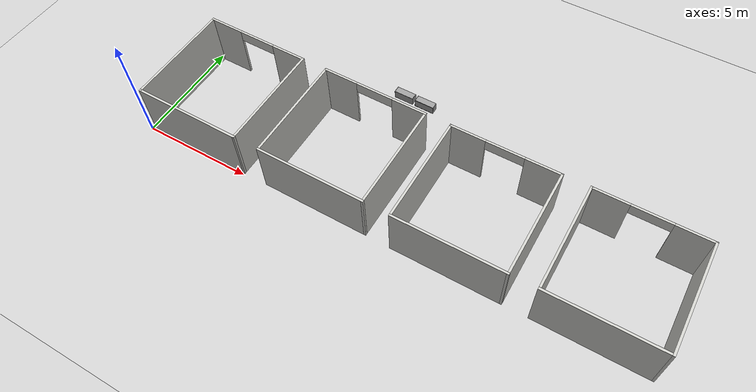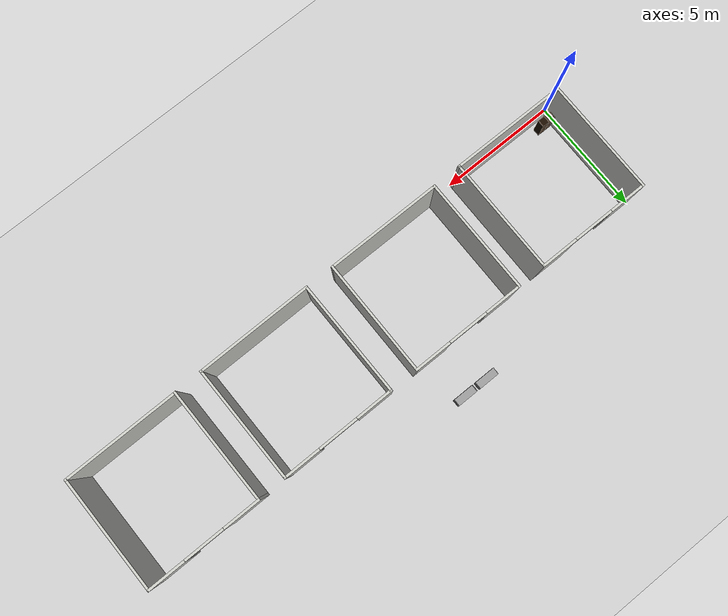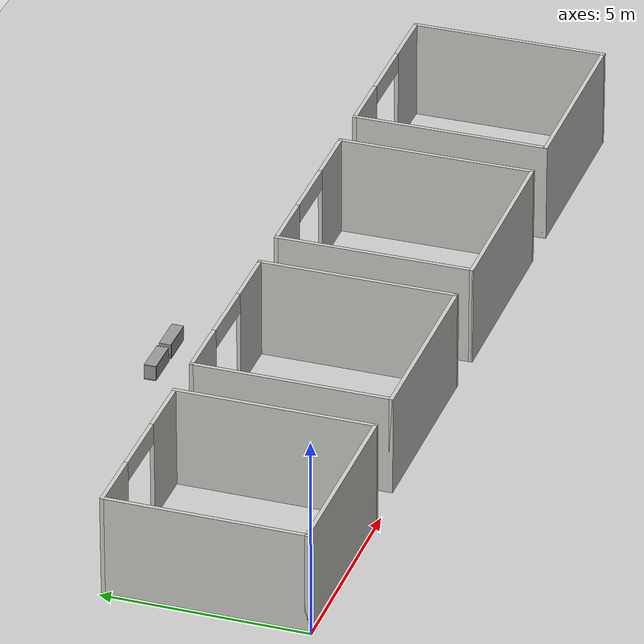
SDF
<sdf version="1.6">
 <world name="default">
  <model name="ground_plane">
   <static>1</static>
   <link name="link">
    <collision name="collision">
     <geometry><plane><normal>0 0 1</normal><size>100 100</size></plane></geometry>
     <surface><friction><ode><mu>100</mu><mu2>50</mu2></ode></friction></surface>
    </collision>
    <visual name="visual">
     <cast_shadows>0</cast_shadows>
     <geometry><plane><normal>0 0 1</normal><size>100 100</size></plane></geometry>
     <material>
      <script><uri>file://media/materials/scripts/gazebo.material</uri><name>Gazebo/Grey</name></script>
     </material>
    </visual>
   </link>
  </model>
  <model name="6_Cube_StorageE">
   <link name="Wall_0">
    <pose>0 0 0.01 0 -0 0</pose>
    <inertial>
     <mass>1.6201</mass>
     <inertia><ixx>0.0119</ixx><iyy>0.0631</iyy><izz>0.0513</izz><ixy>0</ixy><ixz>0</ixz><iyz>0</iyz></inertia>
    </inertial>
    <collision name="Wall_0_Collision"><geometry><box><size>0.616 0.296 0.02</size></box></geometry></collision>
    <visual name="Wall_0_Visual">
     <geometry><box><size>0.616 0.296 0.02</size></box></geometry>
     <material>
      <script><uri>file://media/materials/scripts/gazebo.material</uri><name>Gazebo/Grey</name></script>
      <ambient>0.105882 0.0509804 0 1</ambient>
     </material>
    </visual>
   </link>
   <joint name="0_2" type="fixed">
    <pose>-0.308 0 0 0 -0 0</pose>
    <parent>Wall_2</parent>
    <child>Wall_0</child>
    <axis>
     <xyz>1 0 0</xyz>
     <use_parent_model_frame>0</use_parent_model_frame>
     <limit><lower>-1e+16</lower><upper>1e+16</upper></limit>
    </axis>
   </joint>
   <joint name="0_12" type="fixed">
    <parent>Wall_12</parent>
    <child>Wall_0</child>
    <axis>
     <xyz>0 0 1</xyz>
     <use_parent_model_frame>0</use_parent_model_frame>
     <limit><lower>-1e+16</lower><upper>1e+16</upper></limit>
    </axis>
   </joint>
   <joint name="0_4" type="fixed">
    <pose>0.308 0 0 0 -0 0</pose>
    <parent>Wall_4</parent>
    <child>Wall_0</child>
    <axis>
     <xyz>1 0 0</xyz>
     <use_parent_model_frame>0</use_parent_model_frame>
     <limit><lower>-1e+16</lower><upper>1e+16</upper></limit>
    </axis>
   </joint>
   <link name="Wall_10">
    <pose>0 0 0.61 0 -0 0</pose>
    <inertial>
     <mass>1.6201</mass>
     <inertia><ixx>0.0119</ixx><iyy>0.0631</iyy><izz>0.0513</izz><ixy>0</ixy><ixz>0</ixz><iyz>0</iyz></inertia>
    </inertial>
    <collision name="Wall_10_Collision"><geometry><box><size>0.616 0.296 0.02</size></box></geometry></collision>
    <visual name="Wall_10_Visual">
     <geometry><box><size>0.616 0.296 0.02</size></box></geometry>
     <material>
      <script><uri>file://media/materials/scripts/gazebo.material</uri><name>Gazebo/Grey</name></script>
      <ambient>0.105882 0.0509804 0 1</ambient>
     </material>
    </visual>
   </link>
   <joint name="10_2" type="fixed">
    <pose>-0.308 0 0 0 -0 0</pose>
    <parent>Wall_2</parent>
    <child>Wall_10</child>
    <axis>
     <xyz>1 0 0</xyz>
     <use_parent_model_frame>0</use_parent_model_frame>
     <limit><lower>-1e+16</lower><upper>1e+16</upper></limit>
    </axis>
   </joint>
   <joint name="10_12" type="fixed">
    <parent>Wall_12</parent>
    <child>Wall_10</child>
    <axis>
     <xyz>0 0 1</xyz>
     <use_parent_model_frame>0</use_parent_model_frame>
     <limit><lower>-1e+16</lower><upper>1e+16</upper></limit>
    </axis>
   </joint>
   <joint name="10_4" type="fixed">
    <pose>0.308 0 0 0 -0 0</pose>
    <parent>Wall_4</parent>
    <child>Wall_10</child>
    <axis>
     <xyz>1 0 0</xyz>
     <use_parent_model_frame>0</use_parent_model_frame>
     <limit><lower>-1e+16</lower><upper>1e+16</upper></limit>
    </axis>
   </joint>
   <link name="Wall_12">
    <pose>0 0 0.4575 0 -0 0</pose>
    <inertial>
     <mass>2.4065</mass>
     <inertia><ixx>0.0177</ixx><iyy>0.1855</iyy><izz>0.168</izz><ixy>0</ixy><ixz>0</ixz><iyz>0</iyz></inertia>
    </inertial>
    <collision name="Wall_12_Collision"><geometry><box><size>0.02 0.296 0.915</size></box></geometry></collision>
    <visual name="Wall_12_Visual">
     <geometry><box><size>0.02 0.296 0.915</size></box></geometry>
     <material>
      <script><uri>file://media/materials/scripts/gazebo.material</uri><name>Gazebo/Grey</name></script>
      <ambient>0.105882 0.0509804 0 1</ambient>
     </material>
    </visual>
   </link>
   <link name="Wall_2">
    <pose>-0.298 0 0.4575 0 -0 0</pose>
    <inertial>
     <mass>2.4065</mass>
     <inertia><ixx>0.0177</ixx><iyy>0.1855</iyy><izz>0.168</izz><ixy>0</ixy><ixz>0</ixz><iyz>0</iyz></inertia>
    </inertial>
    <collision name="Wall_2_Collision"><geometry><box><size>0.02 0.296 0.915</size></box></geometry></collision>
    <visual name="Wall_2_Visual">
     <geometry><box><size>0.02 0.296 0.915</size></box></geometry>
     <material>
      <script><uri>file://media/materials/scripts/gazebo.material</uri><name>Gazebo/Grey</name></script>
      <ambient>0.105882 0.0509804 0 1</ambient>
     </material>
    </visual>
   </link>
   <link name="Wall_4">
    <pose>0.298 0 0.4575 0 -0 0</pose>
    <inertial>
     <mass>2.4065</mass>
     <inertia><ixx>0.0177</ixx><iyy>0.1855</iyy><izz>0.168</izz><ixy>0</ixy><ixz>0</ixz><iyz>0</iyz></inertia>
    </inertial>
    <collision name="Wall_4_Collision"><geometry><box><size>0.02 0.296 0.915</size></box></geometry></collision>
    <visual name="Wall_4_Visual">
     <geometry><box><size>0.02 0.296 0.915</size></box></geometry>
     <material>
      <script><uri>file://media/materials/scripts/gazebo.material</uri><name>Gazebo/Grey</name></script>
      <ambient>0.105882 0.0509804 0 1</ambient>
     </material>
    </visual>
   </link>
   <link name="Wall_6">
    <pose>0 0 0.905 0 -0 0</pose>
    <inertial>
     <mass>1.6201</mass>
     <inertia><ixx>0.0119</ixx><iyy>0.0631</iyy><izz>0.0513</izz><ixy>0</ixy><ixz>0</ixz><iyz>0</iyz></inertia>
    </inertial>
    <collision name="Wall_6_Collision"><geometry><box><size>0.616 0.296 0.02</size></box></geometry></collision>
    <visual name="Wall_6_Visual">
     <geometry><box><size>0.616 0.296 0.02</size></box></geometry>
     <material>
      <script><uri>file://media/materials/scripts/gazebo.material</uri><name>Gazebo/Grey</name></script>
      <ambient>0.105882 0.0509804 0 1</ambient>
     </material>
    </visual>
   </link>
   <joint name="6_2" type="fixed">
    <pose>-0.308 0 0 0 -0 0</pose>
    <parent>Wall_2</parent>
    <child>Wall_6</child>
    <axis>
     <xyz>2 0 0</xyz>
     <use_parent_model_frame>0</use_parent_model_frame>
     <limit><lower>-1e+16</lower><upper>1e+16</upper></limit>
    </axis>
   </joint>
   <joint name="6_12" type="fixed">
    <parent>Wall_12</parent>
    <child>Wall_6</child>
    <axis>
     <xyz>0 0 1</xyz>
     <use_parent_model_frame>0</use_parent_model_frame>
     <limit><lower>-1e+16</lower><upper>1e+16</upper></limit>
    </axis>
   </joint>
   <joint name="6_4" type="fixed">
    <pose>0.308 0 0 0 -0 0</pose>
    <parent>Wall_4</parent>
    <child>Wall_6</child>
    <axis>
     <xyz>1 0 0</xyz>
     <use_parent_model_frame>0</use_parent_model_frame>
     <limit><lower>-1e+16</lower><upper>1e+16</upper></limit>
    </axis>
   </joint>
   <link name="Wall_8">
    <pose>0 0 0.305 0 -0 0</pose>
    <inertial>
     <mass>1.6201</mass>
     <inertia><ixx>0.0119</ixx><iyy>0.0631</iyy><izz>0.0513</izz><ixy>0</ixy><ixz>0</ixz><iyz>0</iyz></inertia>
    </inertial>
    <collision name="Wall_8_Collision"><geometry><box><size>0.616 0.296 0.02</size></box></geometry></collision>
    <visual name="Wall_8_Visual">
     <geometry><box><size>0.616 0.296 0.02</size></box></geometry>
     <material>
      <script><uri>file://media/materials/scripts/gazebo.material</uri><name>Gazebo/Grey</name></script>
      <ambient>0.105882 0.0509804 0 1</ambient>
     </material>
    </visual>
   </link>
   <joint name="8_2" type="fixed">
    <pose>-0.308 0 0 0 -0 0</pose>
    <parent>Wall_2</parent>
    <child>Wall_8</child>
    <axis>
     <xyz>1 0 0</xyz>
     <use_parent_model_frame>0</use_parent_model_frame>
     <limit><lower>-1e+16</lower><upper>1e+16</upper></limit>
    </axis>
   </joint>
   <joint name="8_12" type="fixed">
    <parent>Wall_12</parent>
    <child>Wall_8</child>
    <axis>
     <xyz>0 0 1</xyz>
     <use_parent_model_frame>0</use_parent_model_frame>
     <limit><lower>-1e+16</lower><upper>1e+16</upper></limit>
    </axis>
   </joint>
   <joint name="8_4" type="fixed">
    <pose>0.308 0 0 0 -0 0</pose>
    <parent>Wall_4</parent>
    <child>Wall_8</child>
    <axis>
     <xyz>1 0 0</xyz>
     <use_parent_model_frame>0</use_parent_model_frame>
     <limit><lower>-1e+16</lower><upper>1e+16</upper></limit>
    </axis>
   </joint>
   <static>1</static>
   <pose>0.564082 0.506841 0 0 -0 3.13237</pose>
  </model>
  <model name="Wall_Cabinet_36x15W_0">
   <link name="Wall_0">
    <pose>0 0 0.01 0 -0 0</pose>
    <inertial>
     <mass>1.9796</mass>
     <inertia><ixx>0.0145</ixx><iyy>0.1511</iyy><izz>0.1367</izz><ixy>0</ixy><ixz>0</ixz><iyz>0</iyz></inertia>
    </inertial>
    <collision name="Wall_0_Collision"><geometry><box><size>0.91 0.296 0.02</size></box></geometry></collision>
    <visual name="Wall_0_Visual">
     <geometry><box><size>0.91 0.296 0.02</size></box></geometry>
     <material>
      <script><uri>file://media/materials/scripts/gazebo.material</uri><name>Gazebo/Grey</name></script>
      <ambient>1 1 1 1</ambient>
     </material>
    </visual>
   </link>
   <joint name="0_2" type="fixed">
    <pose>-0.455 0 0 0 -0 0</pose>
    <parent>Wall_2</parent>
    <child>Wall_0</child>
    <axis>
     <xyz>0 0 1</xyz>
     <use_parent_model_frame>0</use_parent_model_frame>
     <limit><lower>-1e+16</lower><upper>1e+16</upper></limit>
    </axis>
   </joint>
   <joint name="0_4" type="fixed">
    <pose>0.455 0 0 0 -0 0</pose>
    <parent>Wall_4</parent>
    <child>Wall_0</child>
    <axis>
     <xyz>0 0 1</xyz>
     <use_parent_model_frame>0</use_parent_model_frame>
     <limit><lower>-1e+16</lower><upper>1e+16</upper></limit>
    </axis>
   </joint>
   <joint name="0_8" type="fixed">
    <pose>0 -0.148 0 0 -0 0</pose>
    <parent>Wall_8</parent>
    <child>Wall_0</child>
    <axis>
     <xyz>0 0 1</xyz>
     <use_parent_model_frame>0</use_parent_model_frame>
     <limit><lower>-1e+16</lower><upper>1e+16</upper></limit>
    </axis>
   </joint>
   <link name="Wall_2">
    <pose>-0.445 0 0.192 0 -0 0</pose>
    <inertial>
     <mass>0.8353</mass>
     <inertia><ixx>0.0061</ixx><iyy>0.0164</iyy><izz>0.0103</izz><ixy>0</ixy><ixz>0</ixz><iyz>0</iyz></inertia>
    </inertial>
    <collision name="Wall_2_Collision"><geometry><box><size>0.02 0.296 0.384</size></box></geometry></collision>
    <visual name="Wall_2_Visual">
     <geometry><box><size>0.02 0.296 0.384</size></box></geometry>
     <material>
      <script><uri>file://media/materials/scripts/gazebo.material</uri><name>Gazebo/Grey</name></script>
      <ambient>1 1 1 1</ambient>
     </material>
    </visual>
   </link>
   <link name="Wall_4">
    <pose>0.445 0 0.192 0 -0 0</pose>
    <inertial>
     <mass>0.8353</mass>
     <inertia><ixx>0.0061</ixx><iyy>0.0164</iyy><izz>0.0103</izz><ixy>0</ixy><ixz>0</ixz><iyz>0</iyz></inertia>
    </inertial>
    <collision name="Wall_4_Collision"><geometry><box><size>0.02 0.296 0.384</size></box></geometry></collision>
    <visual name="Wall_4_Visual">
     <geometry><box><size>0.02 0.296 0.384</size></box></geometry>
     <material>
      <script><uri>file://media/materials/scripts/gazebo.material</uri><name>Gazebo/Grey</name></script>
      <ambient>1 1 1 1</ambient>
     </material>
    </visual>
   </link>
   <link name="Wall_6">
    <pose>0 0 0.374 0 -0 0</pose>
    <inertial>
     <mass>1.9796</mass>
     <inertia><ixx>0.0145</ixx><iyy>0.1511</iyy><izz>0.1367</izz><ixy>0</ixy><ixz>0</ixz><iyz>0</iyz></inertia>
    </inertial>
    <collision name="Wall_6_Collision"><geometry><box><size>0.91 0.296 0.02</size></box></geometry></collision>
    <visual name="Wall_6_Visual">
     <geometry><box><size>0.91 0.296 0.02</size></box></geometry>
     <material>
      <script><uri>file://media/materials/scripts/gazebo.material</uri><name>Gazebo/Grey</name></script>
      <ambient>1 1 1 1</ambient>
     </material>
    </visual>
   </link>
   <joint name="6_2" type="fixed">
    <pose>-0.455 0 0 0 -0 0</pose>
    <parent>Wall_2</parent>
    <child>Wall_6</child>
    <axis>
     <xyz>0 0 1</xyz>
     <use_parent_model_frame>0</use_parent_model_frame>
     <limit><lower>-1e+16</lower><upper>1e+16</upper></limit>
    </axis>
   </joint>
   <joint name="6_4" type="fixed">
    <pose>0.455 0 0 0 -0 0</pose>
    <parent>Wall_4</parent>
    <child>Wall_6</child>
    <axis>
     <xyz>0 0 1</xyz>
     <use_parent_model_frame>0</use_parent_model_frame>
     <limit><lower>-1e+16</lower><upper>1e+16</upper></limit>
    </axis>
   </joint>
   <joint name="6_8" type="fixed">
    <pose>0 -0.148 0 0 -0 0</pose>
    <parent>Wall_8</parent>
    <child>Wall_6</child>
    <axis>
     <xyz>0 0 1</xyz>
     <use_parent_model_frame>0</use_parent_model_frame>
     <limit><lower>-1e+16</lower><upper>1e+16</upper></limit>
    </axis>
   </joint>
   <link name="Wall_8">
    <pose>0 -0.138 0.19 0 -0 0</pose>
    <inertial>
     <mass>2.5302</mass>
     <inertia><ixx>0.0305</ixx><iyy>0.1732</iyy><izz>0.2035</izz><ixy>0</ixy><ixz>0</ixz><iyz>0</iyz></inertia>
    </inertial>
    <collision name="Wall_8_Collision"><geometry><box><size>0.906 0.02 0.38</size></box></geometry></collision>
    <visual name="Wall_8_Visual">
     <geometry><box><size>0.906 0.02 0.38</size></box></geometry>
     <material>
      <script><uri>file://media/materials/scripts/gazebo.material</uri><name>Gazebo/Grey</name></script>
      <ambient>1 1 1 1</ambient>
     </material>
    </visual>
   </link>
   <joint name="8_2" type="fixed">
    <pose>-0.453 0 0 0 -0 0</pose>
    <parent>Wall_2</parent>
    <child>Wall_8</child>
    <axis>
     <xyz>0 1 0</xyz>
     <use_parent_model_frame>0</use_parent_model_frame>
     <limit><lower>-1e+16</lower><upper>1e+16</upper></limit>
    </axis>
   </joint>
   <joint name="8_4" type="fixed">
    <pose>0.453 0 0 0 -0 0</pose>
    <parent>Wall_4</parent>
    <child>Wall_8</child>
    <axis>
     <xyz>0 1 0</xyz>
     <use_parent_model_frame>0</use_parent_model_frame>
     <limit><lower>-1e+16</lower><upper>1e+16</upper></limit>
    </axis>
   </joint>
   <static>1</static>
   <pose>8.93468 6.79978 0.323467 0 -0 0</pose>
  </model>
  <model name="Wall_Cabinet_36x15W_1">
   <link name="Wall_0">
    <pose>0 0 0.01 0 -0 0</pose>
    <inertial>
     <mass>1.9796</mass>
     <inertia><ixx>0.0145</ixx><iyy>0.1511</iyy><izz>0.1367</izz><ixy>0</ixy><ixz>0</ixz><iyz>0</iyz></inertia>
    </inertial>
    <collision name="Wall_0_Collision"><geometry><box><size>0.91 0.296 0.02</size></box></geometry></collision>
    <visual name="Wall_0_Visual">
     <geometry><box><size>0.91 0.296 0.02</size></box></geometry>
     <material>
      <script><uri>file://media/materials/scripts/gazebo.material</uri><name>Gazebo/Grey</name></script>
      <ambient>1 1 1 1</ambient>
     </material>
    </visual>
   </link>
   <joint name="0_2" type="fixed">
    <pose>-0.455 0 0 0 -0 0</pose>
    <parent>Wall_2</parent>
    <child>Wall_0</child>
    <axis>
     <xyz>0 0 1</xyz>
     <use_parent_model_frame>0</use_parent_model_frame>
     <limit><lower>-1e+16</lower><upper>1e+16</upper></limit>
    </axis>
   </joint>
   <joint name="0_4" type="fixed">
    <pose>0.455 0 0 0 -0 0</pose>
    <parent>Wall_4</parent>
    <child>Wall_0</child>
    <axis>
     <xyz>0 0 1</xyz>
     <use_parent_model_frame>0</use_parent_model_frame>
     <limit><lower>-1e+16</lower><upper>1e+16</upper></limit>
    </axis>
   </joint>
   <joint name="0_8" type="fixed">
    <pose>0 -0.148 0 0 -0 0</pose>
    <parent>Wall_8</parent>
    <child>Wall_0</child>
    <axis>
     <xyz>0 0 1</xyz>
     <use_parent_model_frame>0</use_parent_model_frame>
     <limit><lower>-1e+16</lower><upper>1e+16</upper></limit>
    </axis>
   </joint>
   <link name="Wall_2">
    <pose>-0.445 0 0.192 0 -0 0</pose>
    <inertial>
     <mass>0.8353</mass>
     <inertia><ixx>0.0061</ixx><iyy>0.0164</iyy><izz>0.0103</izz><ixy>0</ixy><ixz>0</ixz><iyz>0</iyz></inertia>
    </inertial>
    <collision name="Wall_2_Collision"><geometry><box><size>0.02 0.296 0.384</size></box></geometry></collision>
    <visual name="Wall_2_Visual">
     <geometry><box><size>0.02 0.296 0.384</size></box></geometry>
     <material>
      <script><uri>file://media/materials/scripts/gazebo.material</uri><name>Gazebo/Grey</name></script>
      <ambient>1 1 1 1</ambient>
     </material>
    </visual>
   </link>
   <link name="Wall_4">
    <pose>0.445 0 0.192 0 -0 0</pose>
    <inertial>
     <mass>0.8353</mass>
     <inertia><ixx>0.0061</ixx><iyy>0.0164</iyy><izz>0.0103</izz><ixy>0</ixy><ixz>0</ixz><iyz>0</iyz></inertia>
    </inertial>
    <collision name="Wall_4_Collision"><geometry><box><size>0.02 0.296 0.384</size></box></geometry></collision>
    <visual name="Wall_4_Visual">
     <geometry><box><size>0.02 0.296 0.384</size></box></geometry>
     <material>
      <script><uri>file://media/materials/scripts/gazebo.material</uri><name>Gazebo/Grey</name></script>
      <ambient>1 1 1 1</ambient>
     </material>
    </visual>
   </link>
   <link name="Wall_6">
    <pose>0 0 0.374 0 -0 0</pose>
    <inertial>
     <mass>1.9796</mass>
     <inertia><ixx>0.0145</ixx><iyy>0.1511</iyy><izz>0.1367</izz><ixy>0</ixy><ixz>0</ixz><iyz>0</iyz></inertia>
    </inertial>
    <collision name="Wall_6_Collision"><geometry><box><size>0.91 0.296 0.02</size></box></geometry></collision>
    <visual name="Wall_6_Visual">
     <geometry><box><size>0.91 0.296 0.02</size></box></geometry>
     <material>
      <script><uri>file://media/materials/scripts/gazebo.material</uri><name>Gazebo/Grey</name></script>
      <ambient>1 1 1 1</ambient>
     </material>
    </visual>
   </link>
   <joint name="6_2" type="fixed">
    <pose>-0.455 0 0 0 -0 0</pose>
    <parent>Wall_2</parent>
    <child>Wall_6</child>
    <axis>
     <xyz>0 0 1</xyz>
     <use_parent_model_frame>0</use_parent_model_frame>
     <limit><lower>-1e+16</lower><upper>1e+16</upper></limit>
    </axis>
   </joint>
   <joint name="6_4" type="fixed">
    <pose>0.455 0 0 0 -0 0</pose>
    <parent>Wall_4</parent>
    <child>Wall_6</child>
    <axis>
     <xyz>0 0 1</xyz>
     <use_parent_model_frame>0</use_parent_model_frame>
     <limit><lower>-1e+16</lower><upper>1e+16</upper></limit>
    </axis>
   </joint>
   <joint name="6_8" type="fixed">
    <pose>0 -0.148 0 0 -0 0</pose>
    <parent>Wall_8</parent>
    <child>Wall_6</child>
    <axis>
     <xyz>0 0 1</xyz>
     <use_parent_model_frame>0</use_parent_model_frame>
     <limit><lower>-1e+16</lower><upper>1e+16</upper></limit>
    </axis>
   </joint>
   <link name="Wall_8">
    <pose>0 -0.138 0.19 0 -0 0</pose>
    <inertial>
     <mass>2.5302</mass>
     <inertia><ixx>0.0305</ixx><iyy>0.1732</iyy><izz>0.2035</izz><ixy>0</ixy><ixz>0</ixz><iyz>0</iyz></inertia>
    </inertial>
    <collision name="Wall_8_Collision"><geometry><box><size>0.906 0.02 0.38</size></box></geometry></collision>
    <visual name="Wall_8_Visual">
     <geometry><box><size>0.906 0.02 0.38</size></box></geometry>
     <material>
      <script><uri>file://media/materials/scripts/gazebo.material</uri><name>Gazebo/Grey</name></script>
      <ambient>1 1 1 1</ambient>
     </material>
    </visual>
   </link>
   <joint name="8_2" type="fixed">
    <pose>-0.453 0 0 0 -0 0</pose>
    <parent>Wall_2</parent>
    <child>Wall_8</child>
    <axis>
     <xyz>0 1 0</xyz>
     <use_parent_model_frame>0</use_parent_model_frame>
     <limit><lower>-1e+16</lower><upper>1e+16</upper></limit>
    </axis>
   </joint>
   <joint name="8_4" type="fixed">
    <pose>0.453 0 0 0 -0 0</pose>
    <parent>Wall_4</parent>
    <child>Wall_8</child>
    <axis>
     <xyz>0 1 0</xyz>
     <use_parent_model_frame>0</use_parent_model_frame>
     <limit><lower>-1e+16</lower><upper>1e+16</upper></limit>
    </axis>
   </joint>
   <static>1</static>
   <pose>9.96545 6.79431 0.32179 0 -0 0</pose>
  </model>
  <model name="room_wall_7">
   <pose>2.55527 2.53266 0 0 -0 1.56855</pose>
   <link name="Wall_21">
    <collision name="Wall_21_Collision">
     <geometry><box><size>4.9 0.1 2.5</size></box></geometry>
     <pose>0 0 1.25 0 -0 0</pose>
    </collision>
    <visual name="Wall_21_Visual">
     <pose>0 0 1.25 0 -0 0</pose>
     <geometry><box><size>4.9 0.1 2.5</size></box></geometry>
     <material>
      <script><uri>file://media/materials/scripts/gazebo.material</uri><name>Gazebo/CeilingTiled</name></script>
      <ambient>1 0.764706 0.305882 1</ambient>
     </material>
     <meta><layer>0</layer></meta>
    </visual>
    <pose>0 2.4 0 0 -0 0</pose>
   </link>
   <link name="Wall_22">
    <pose>2.4 0 0 0 0 -1.5708</pose>
    <visual name="Wall_22_Visual_0">
     <pose>-1.64961 0 1.25 0 -0 0</pose>
     <geometry><box><size>1.60079 0.1 2.5</size></box></geometry>
     <material>
      <script><uri>file://media/materials/scripts/gazebo.material</uri><name>Gazebo/CeilingTiled</name></script>
      <ambient>1 0.764706 0.305882 1</ambient>
     </material>
     <meta><layer>0</layer></meta>
    </visual>
    <collision name="Wall_22_Collision_0">
     <geometry><box><size>1.60079 0.1 2.5</size></box></geometry>
     <pose>-1.64961 0 1.25 0 -0 0</pose>
    </collision>
    <visual name="Wall_22_Visual_1">
     <pose>1.65039 0 1.25 0 -0 0</pose>
     <geometry><box><size>1.59921 0.1 2.5</size></box></geometry>
     <material>
      <script><uri>file://media/materials/scripts/gazebo.material</uri><name>Gazebo/CeilingTiled</name></script>
      <ambient>1 0.764706 0.305882 1</ambient>
     </material>
     <meta><layer>0</layer></meta>
    </visual>
    <collision name="Wall_22_Collision_1">
     <geometry><box><size>1.59921 0.1 2.5</size></box></geometry>
     <pose>1.65039 0 1.25 0 -0 0</pose>
    </collision>
    <visual name="Wall_22_Visual_2">
     <pose>0.000786 0 2.25 0 -0 0</pose>
     <geometry><box><size>1.7 0.1 0.5</size></box></geometry>
     <material>
      <script><uri>file://media/materials/scripts/gazebo.material</uri><name>Gazebo/CeilingTiled</name></script>
      <ambient>1 0.764706 0.305882 1</ambient>
     </material>
     <meta><layer>0</layer></meta>
    </visual>
    <collision name="Wall_22_Collision_2">
     <geometry><box><size>1.7 0.1 0.5</size></box></geometry>
     <pose>0.000786 0 2.25 0 -0 0</pose>
    </collision>
   </link>
   <link name="Wall_23">
    <collision name="Wall_23_Collision">
     <geometry><box><size>4.9 0.1 2.5</size></box></geometry>
     <pose>0 0 1.25 0 -0 0</pose>
    </collision>
    <visual name="Wall_23_Visual">
     <pose>0 0 1.25 0 -0 0</pose>
     <geometry><box><size>4.9 0.1 2.5</size></box></geometry>
     <material>
      <script><uri>file://media/materials/scripts/gazebo.material</uri><name>Gazebo/CeilingTiled</name></script>
      <ambient>1 0.764706 0.305882 1</ambient>
     </material>
     <meta><layer>0</layer></meta>
    </visual>
    <pose>0 -2.4 0 0 -0 3.14159</pose>
   </link>
   <link name="Wall_24">
    <collision name="Wall_24_Collision">
     <geometry><box><size>4.9 0.1 2.5</size></box></geometry>
     <pose>0 0 1.25 0 -0 0</pose>
    </collision>
    <visual name="Wall_24_Visual">
     <pose>0 0 1.25 0 -0 0</pose>
     <geometry><box><size>4.9 0.1 2.5</size></box></geometry>
     <material>
      <script><uri>file://media/materials/scripts/gazebo.material</uri><name>Gazebo/CeilingTiled</name></script>
      <ambient>1 0.764706 0.305882 1</ambient>
     </material>
     <meta><layer>0</layer></meta>
    </visual>
    <pose>-2.4 0 0 0 -0 1.5708</pose>
   </link>
   <static>1</static>
  </model>
  <model name="room_wall_8">
   <pose>8.54297 2.5293 0 0 -0 1.56969</pose>
   <link name="Wall_21">
    <collision name="Wall_21_Collision">
     <geometry><box><size>4.9 0.1 2.5</size></box></geometry>
     <pose>0 0 1.25 0 -0 0</pose>
    </collision>
    <visual name="Wall_21_Visual">
     <pose>0 0 1.25 0 -0 0</pose>
     <geometry><box><size>4.9 0.1 2.5</size></box></geometry>
     <material>
      <script><uri>file://media/materials/scripts/gazebo.material</uri><name>Gazebo/CeilingTiled</name></script>
      <ambient>1 0.764706 0.305882 1</ambient>
     </material>
     <meta><layer>0</layer></meta>
    </visual>
    <pose>0 2.4 0 0 -0 0</pose>
   </link>
   <link name="Wall_22">
    <pose>2.4 0 0 0 0 -1.5708</pose>
    <visual name="Wall_22_Visual_0">
     <pose>-1.64961 0 1.25 0 -0 0</pose>
     <geometry><box><size>1.60079 0.1 2.5</size></box></geometry>
     <material>
      <script><uri>file://media/materials/scripts/gazebo.material</uri><name>Gazebo/CeilingTiled</name></script>
      <ambient>1 0.764706 0.305882 1</ambient>
     </material>
     <meta><layer>0</layer></meta>
    </visual>
    <collision name="Wall_22_Collision_0">
     <geometry><box><size>1.60079 0.1 2.5</size></box></geometry>
     <pose>-1.64961 0 1.25 0 -0 0</pose>
    </collision>
    <visual name="Wall_22_Visual_1">
     <pose>1.65039 0 1.25 0 -0 0</pose>
     <geometry><box><size>1.59921 0.1 2.5</size></box></geometry>
     <material>
      <script><uri>file://media/materials/scripts/gazebo.material</uri><name>Gazebo/CeilingTiled</name></script>
      <ambient>1 0.764706 0.305882 1</ambient>
     </material>
     <meta><layer>0</layer></meta>
    </visual>
    <collision name="Wall_22_Collision_1">
     <geometry><box><size>1.59921 0.1 2.5</size></box></geometry>
     <pose>1.65039 0 1.25 0 -0 0</pose>
    </collision>
    <visual name="Wall_22_Visual_2">
     <pose>0.000786 0 2.25 0 -0 0</pose>
     <geometry><box><size>1.7 0.1 0.5</size></box></geometry>
     <material>
      <script><uri>file://media/materials/scripts/gazebo.material</uri><name>Gazebo/CeilingTiled</name></script>
      <ambient>1 0.764706 0.305882 1</ambient>
     </material>
     <meta><layer>0</layer></meta>
    </visual>
    <collision name="Wall_22_Collision_2">
     <geometry><box><size>1.7 0.1 0.5</size></box></geometry>
     <pose>0.000786 0 2.25 0 -0 0</pose>
    </collision>
   </link>
   <link name="Wall_23">
    <collision name="Wall_23_Collision">
     <geometry><box><size>4.9 0.1 2.5</size></box></geometry>
     <pose>0 0 1.25 0 -0 0</pose>
    </collision>
    <visual name="Wall_23_Visual">
     <pose>0 0 1.25 0 -0 0</pose>
     <geometry><box><size>4.9 0.1 2.5</size></box></geometry>
     <material>
      <script><uri>file://media/materials/scripts/gazebo.material</uri><name>Gazebo/CeilingTiled</name></script>
      <ambient>1 0.764706 0.305882 1</ambient>
     </material>
     <meta><layer>0</layer></meta>
    </visual>
    <pose>0 -2.4 0 0 -0 3.14159</pose>
   </link>
   <link name="Wall_24">
    <collision name="Wall_24_Collision">
     <geometry><box><size>4.9 0.1 2.5</size></box></geometry>
     <pose>0 0 1.25 0 -0 0</pose>
    </collision>
    <visual name="Wall_24_Visual">
     <pose>0 0 1.25 0 -0 0</pose>
     <geometry><box><size>4.9 0.1 2.5</size></box></geometry>
     <material>
      <script><uri>file://media/materials/scripts/gazebo.material</uri><name>Gazebo/CeilingTiled</name></script>
      <ambient>1 0.764706 0.305882 1</ambient>
     </material>
     <meta><layer>0</layer></meta>
    </visual>
    <pose>-2.4 0 0 0 -0 1.5708</pose>
   </link>
   <static>1</static>
  </model>
  <model name="room_wall_9">
   <pose>14.5312 2.52444 0 0 -0 1.57413</pose>
   <link name="Wall_21">
    <collision name="Wall_21_Collision">
     <geometry><box><size>4.9 0.1 2.5</size></box></geometry>
     <pose>0 0 1.25 0 -0 0</pose>
    </collision>
    <visual name="Wall_21_Visual">
     <pose>0 0 1.25 0 -0 0</pose>
     <geometry><box><size>4.9 0.1 2.5</size></box></geometry>
     <material>
      <script><uri>file://media/materials/scripts/gazebo.material</uri><name>Gazebo/CeilingTiled</name></script>
      <ambient>1 0.764706 0.305882 1</ambient>
     </material>
     <meta><layer>0</layer></meta>
    </visual>
    <pose>0 2.4 0 0 -0 0</pose>
   </link>
   <link name="Wall_22">
    <pose>2.4 0 0 0 0 -1.5708</pose>
    <visual name="Wall_22_Visual_0">
     <pose>-1.64961 0 1.25 0 -0 0</pose>
     <geometry><box><size>1.60079 0.1 2.5</size></box></geometry>
     <material>
      <script><uri>file://media/materials/scripts/gazebo.material</uri><name>Gazebo/CeilingTiled</name></script>
      <ambient>1 0.764706 0.305882 1</ambient>
     </material>
     <meta><layer>0</layer></meta>
    </visual>
    <collision name="Wall_22_Collision_0">
     <geometry><box><size>1.60079 0.1 2.5</size></box></geometry>
     <pose>-1.64961 0 1.25 0 -0 0</pose>
    </collision>
    <visual name="Wall_22_Visual_1">
     <pose>1.65039 0 1.25 0 -0 0</pose>
     <geometry><box><size>1.59921 0.1 2.5</size></box></geometry>
     <material>
      <script><uri>file://media/materials/scripts/gazebo.material</uri><name>Gazebo/CeilingTiled</name></script>
      <ambient>1 0.764706 0.305882 1</ambient>
     </material>
     <meta><layer>0</layer></meta>
    </visual>
    <collision name="Wall_22_Collision_1">
     <geometry><box><size>1.59921 0.1 2.5</size></box></geometry>
     <pose>1.65039 0 1.25 0 -0 0</pose>
    </collision>
    <visual name="Wall_22_Visual_2">
     <pose>0.000786 0 2.25 0 -0 0</pose>
     <geometry><box><size>1.7 0.1 0.5</size></box></geometry>
     <material>
      <script><uri>file://media/materials/scripts/gazebo.material</uri><name>Gazebo/CeilingTiled</name></script>
      <ambient>1 0.764706 0.305882 1</ambient>
     </material>
     <meta><layer>0</layer></meta>
    </visual>
    <collision name="Wall_22_Collision_2">
     <geometry><box><size>1.7 0.1 0.5</size></box></geometry>
     <pose>0.000786 0 2.25 0 -0 0</pose>
    </collision>
   </link>
   <link name="Wall_23">
    <collision name="Wall_23_Collision">
     <geometry><box><size>4.9 0.1 2.5</size></box></geometry>
     <pose>0 0 1.25 0 -0 0</pose>
    </collision>
    <visual name="Wall_23_Visual">
     <pose>0 0 1.25 0 -0 0</pose>
     <geometry><box><size>4.9 0.1 2.5</size></box></geometry>
     <material>
      <script><uri>file://media/materials/scripts/gazebo.material</uri><name>Gazebo/CeilingTiled</name></script>
      <ambient>1 0.764706 0.305882 1</ambient>
     </material>
     <meta><layer>0</layer></meta>
    </visual>
    <pose>0 -2.4 0 0 -0 3.14159</pose>
   </link>
   <link name="Wall_24">
    <collision name="Wall_24_Collision">
     <geometry><box><size>4.9 0.1 2.5</size></box></geometry>
     <pose>0 0 1.25 0 -0 0</pose>
    </collision>
    <visual name="Wall_24_Visual">
     <pose>0 0 1.25 0 -0 0</pose>
     <geometry><box><size>4.9 0.1 2.5</size></box></geometry>
     <material>
      <script><uri>file://media/materials/scripts/gazebo.material</uri><name>Gazebo/CeilingTiled</name></script>
      <ambient>1 0.764706 0.305882 1</ambient>
     </material>
     <meta><layer>0</layer></meta>
    </visual>
    <pose>-2.4 0 0 0 -0 1.5708</pose>
   </link>
   <static>1</static>
  </model>
  <model name="room_wall_10">
   <pose>20.5102 2.55819 0 0 -0 1.57344</pose>
   <link name="Wall_21">
    <collision name="Wall_21_Collision">
     <geometry><box><size>4.9 0.1 2.5</size></box></geometry>
     <pose>0 0 1.25 0 -0 0</pose>
    </collision>
    <visual name="Wall_21_Visual">
     <pose>0 0 1.25 0 -0 0</pose>
     <geometry><box><size>4.9 0.1 2.5</size></box></geometry>
     <material>
      <script><uri>file://media/materials/scripts/gazebo.material</uri><name>Gazebo/CeilingTiled</name></script>
      <ambient>1 0.764706 0.305882 1</ambient>
     </material>
     <meta><layer>0</layer></meta>
    </visual>
    <pose>0 2.4 0 0 -0 0</pose>
   </link>
   <link name="Wall_22">
    <pose>2.4 0 0 0 0 -1.5708</pose>
    <visual name="Wall_22_Visual_0">
     <pose>-1.64961 0 1.25 0 -0 0</pose>
     <geometry><box><size>1.60079 0.1 2.5</size></box></geometry>
     <material>
      <script><uri>file://media/materials/scripts/gazebo.material</uri><name>Gazebo/CeilingTiled</name></script>
      <ambient>1 0.764706 0.305882 1</ambient>
     </material>
     <meta><layer>0</layer></meta>
    </visual>
    <collision name="Wall_22_Collision_0">
     <geometry><box><size>1.60079 0.1 2.5</size></box></geometry>
     <pose>-1.64961 0 1.25 0 -0 0</pose>
    </collision>
    <visual name="Wall_22_Visual_1">
     <pose>1.65039 0 1.25 0 -0 0</pose>
     <geometry><box><size>1.59921 0.1 2.5</size></box></geometry>
     <material>
      <script><uri>file://media/materials/scripts/gazebo.material</uri><name>Gazebo/CeilingTiled</name></script>
      <ambient>1 0.764706 0.305882 1</ambient>
     </material>
     <meta><layer>0</layer></meta>
    </visual>
    <collision name="Wall_22_Collision_1">
     <geometry><box><size>1.59921 0.1 2.5</size></box></geometry>
     <pose>1.65039 0 1.25 0 -0 0</pose>
    </collision>
    <visual name="Wall_22_Visual_2">
     <pose>0.000786 0 2.25 0 -0 0</pose>
     <geometry><box><size>1.7 0.1 0.5</size></box></geometry>
     <material>
      <script><uri>file://media/materials/scripts/gazebo.material</uri><name>Gazebo/CeilingTiled</name></script>
      <ambient>1 0.764706 0.305882 1</ambient>
     </material>
     <meta><layer>0</layer></meta>
    </visual>
    <collision name="Wall_22_Collision_2">
     <geometry><box><size>1.7 0.1 0.5</size></box></geometry>
     <pose>0.000786 0 2.25 0 -0 0</pose>
    </collision>
   </link>
   <link name="Wall_23">
    <collision name="Wall_23_Collision">
     <geometry><box><size>4.9 0.1 2.5</size></box></geometry>
     <pose>0 0 1.25 0 -0 0</pose>
    </collision>
    <visual name="Wall_23_Visual">
     <pose>0 0 1.25 0 -0 0</pose>
     <geometry><box><size>4.9 0.1 2.5</size></box></geometry>
     <material>
      <script><uri>file://media/materials/scripts/gazebo.material</uri><name>Gazebo/CeilingTiled</name></script>
      <ambient>1 0.764706 0.305882 1</ambient>
     </material>
     <meta><layer>0</layer></meta>
    </visual>
    <pose>0 -2.4 0 0 -0 3.14159</pose>
   </link>
   <link name="Wall_24">
    <collision name="Wall_24_Collision">
     <geometry><box><size>4.9 0.1 2.5</size></box></geometry>
     <pose>0 0 1.25 0 -0 0</pose>
    </collision>
    <visual name="Wall_24_Visual">
     <pose>0 0 1.25 0 -0 0</pose>
     <geometry><box><size>4.9 0.1 2.5</size></box></geometry>
     <material>
      <script><uri>file://media/materials/scripts/gazebo.material</uri><name>Gazebo/CeilingTiled</name></script>
      <ambient>1 0.764706 0.305882 1</ambient>
     </material>
     <meta><layer>0</layer></meta>
    </visual>
    <pose>-2.4 0 0 0 -0 1.5708</pose>
   </link>
   <static>1</static>
  </model>
 </world>
</sdf>
